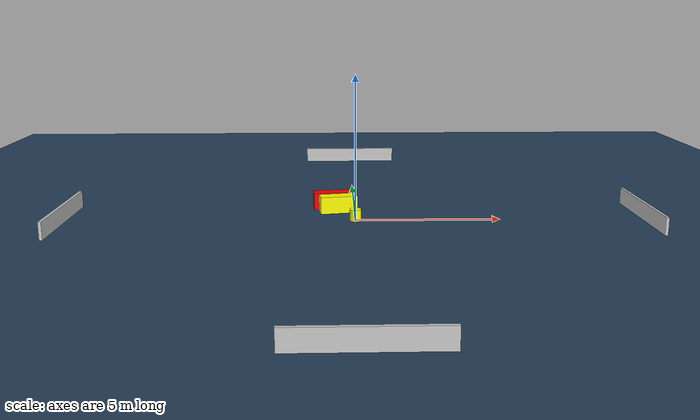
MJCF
<?xml version="1.0" ?>
<mujoco model="generated_environment">
  <option timestep="0.01" integrator="RK4" cone="elliptic"/>
  <default>
    <geom density="1"/>
  </default>
  <asset>
    <texture builtin="gradient" height="3072" name="skybox" rgb1="0.3 0.5 0.7" rgb2="0 0 0" type="skybox" width="512"/>
    <texture builtin="checker" height="300" name="groundplane" rgb1="0.2 0.3 0.4" rgb2="0.1 0.2 0.3" type="2d" width="300"/>
    <material name="groundplane" reflectance="0.2" texrepeat="5 5" texture="groundplane"/>
  </asset>
  <worldbody>
    <light dir="0 0 -1" directional="true" pos="0 0 1.5"/>
    <geom condim="3" friction="0.5 0.005 0.001" material="groundplane" name="floor" pos="0 0 0" size="0 0 0.05" type="plane"/>
    <body name="walls">
      <geom name="wall_1" condim="4" pos="-10.0 0.0 0.3" rgba="0.800000011920929 0.800000011920929 0.800000011920929 1.0" size="0.05 2.0 0.3" type="box"/>
      <geom name="wall_2" condim="4" pos="10.0 0.0 0.3" rgba="0.800000011920929 0.800000011920929 0.800000011920929 1.0" size="0.05 2.0 0.3" type="box"/>
      <geom name="wall_3" condim="4" pos="0.0 -10.0 0.3" rgba="0.800000011920929 0.800000011920929 0.800000011920929 1.0" size="2.0 0.05 0.3" type="box"/>
      <geom name="wall_4" condim="4" pos="0.0 10.0 0.3" rgba="0.800000011920929 0.800000011920929 0.800000011920929 1.0" size="2.0 0.05 0.3" type="box"/>
    </body>
    <body name="robot">
      <joint name="joint_x" type="slide" pos="0 0 0" axis="1 0 0"/>
      <joint name="joint_y" type="slide" pos="0 0 0" axis="0 1 0"/>
      <geom name="robot" type="cylinder" pos="0.0 0.0 0.2" size="0.2 0.2 0.0" mass="5.0" friction="1.0 0.005 0.0001" condim="4" rgba="1.0 1.0 0.0 1.0"/>
    </body>
    <body name="obstacle_1_movable">
      <geom name="obstacle_1_movable" condim="4" pos="-0.5877061246622447 1.1341036104844335 0.3" euler="0 0 99.83204214014276" friction="0.0 0.005 0.001" rgba="1.0 1.0 0.0 1.0" size="0.25387513146739243 0.6591146865008742 0.3" type="box" mass="0.1"/>
      <joint type="free"/>
    </body>
    <body name="obstacle_2_static">
      <geom name="obstacle_2_static" condim="4" pos="-0.7334186527776176 1.696590940807466 0.3" euler="0 0 186.6554168214666" friction="0.0 0.005 0.001" rgba="1.0 0.0 0.0 1.0" size="0.7407042702777042 0.24155373171986103 0.3" type="box"/>
    </body>
  </worldbody>
  <actuator>
    <motor name="actuator_x" joint="joint_x" gear="1" ctrlrange="-1 1"/>
    <motor name="actuator_y" joint="joint_y" gear="1" ctrlrange="-1 1"/>
  </actuator>
</mujoco>
